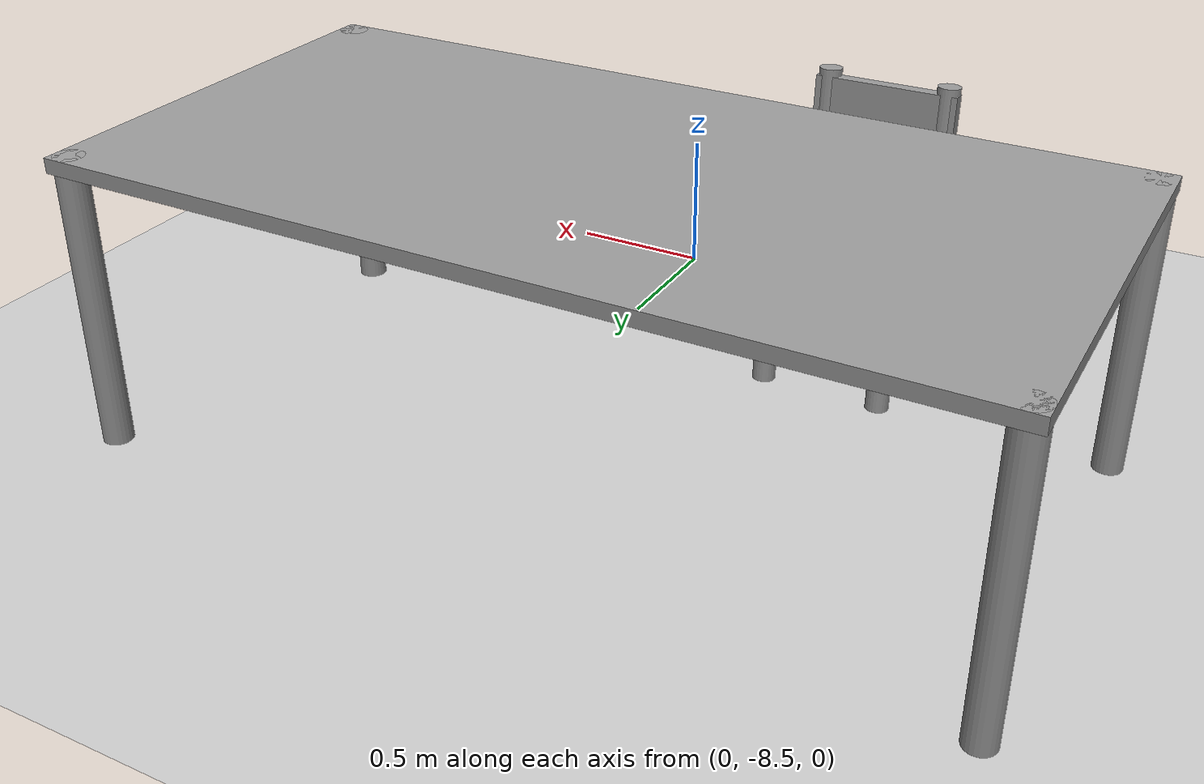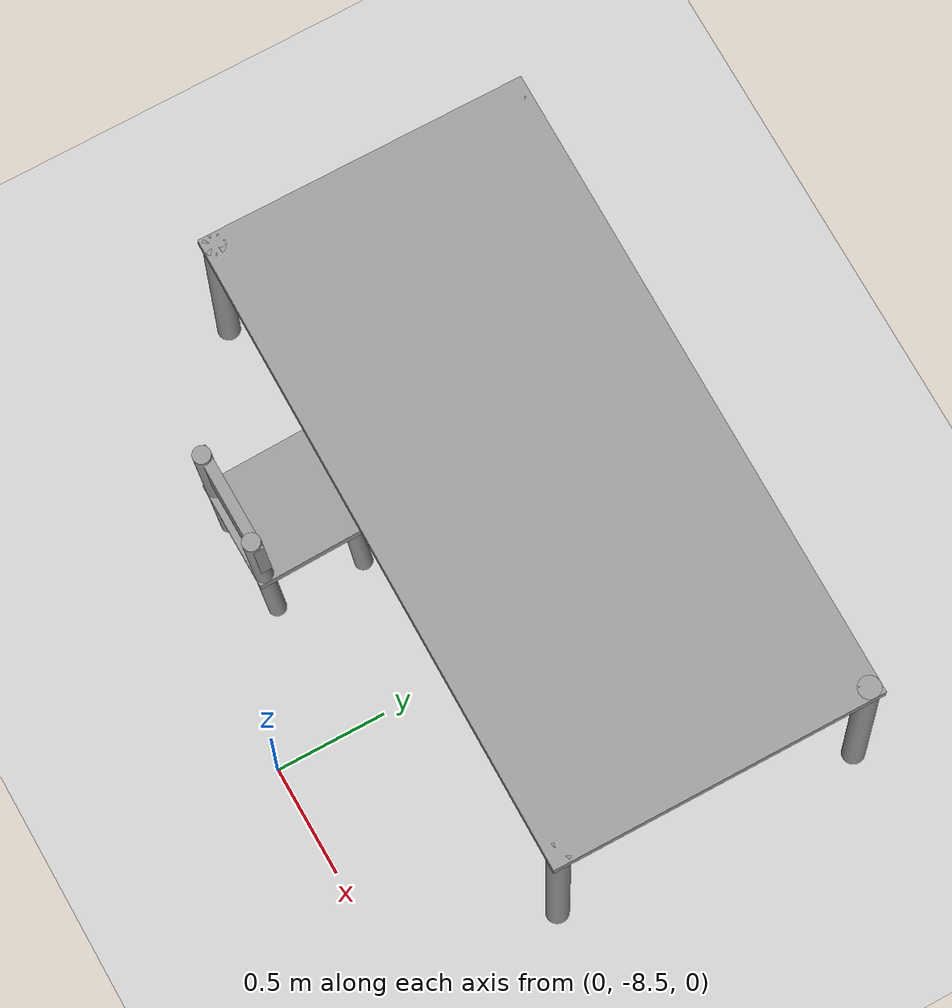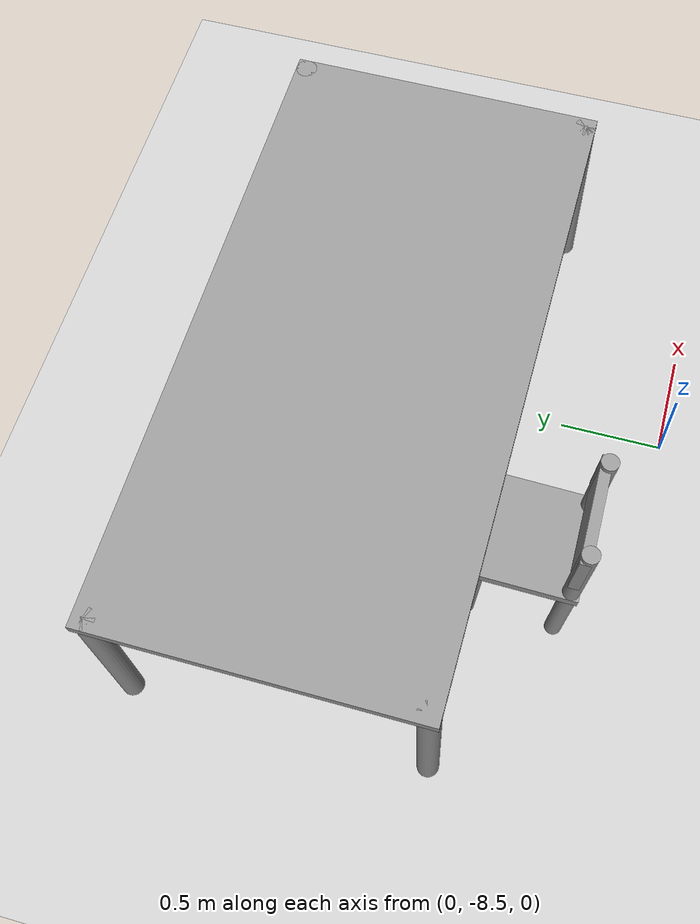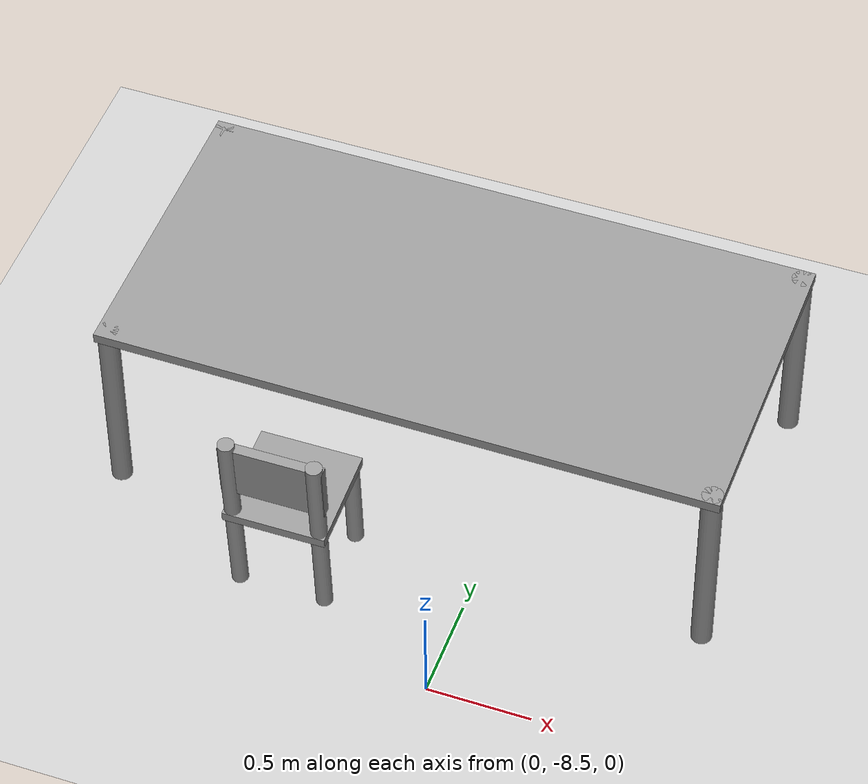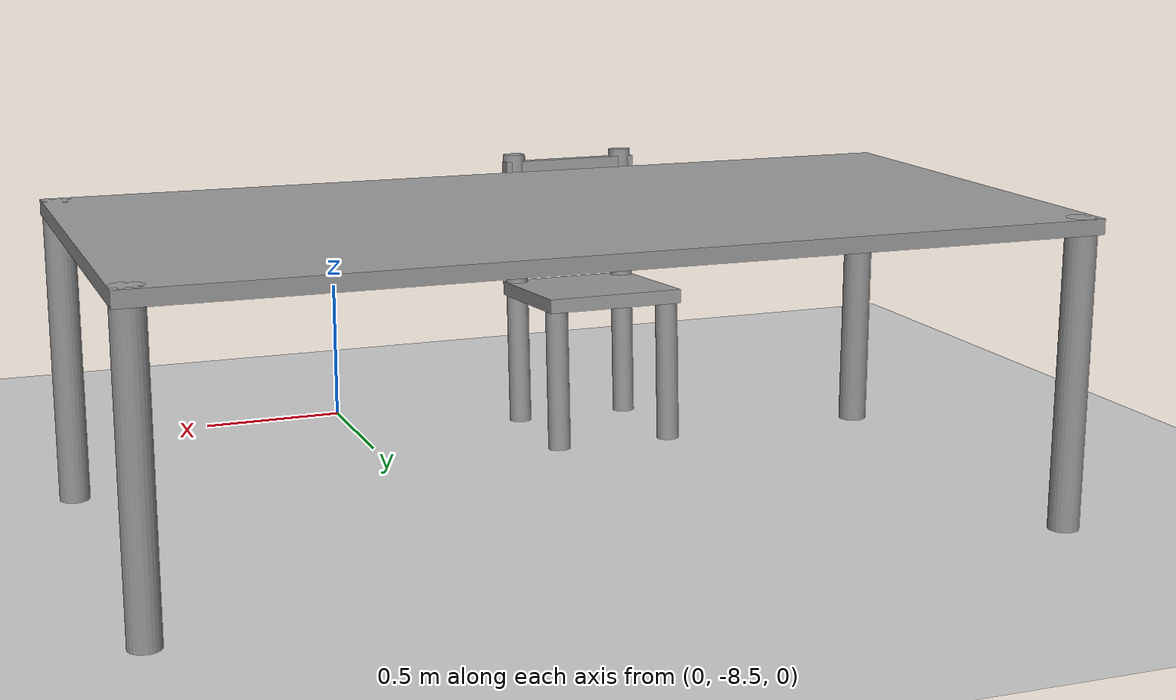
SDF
<sdf version="1.6">
 <world name="default">
  <model name="ground_plane">
   <static>1</static>
   <link name="link">
    <collision name="collision">
     <geometry><plane><normal>0 0 1</normal><size>100 100</size></plane></geometry>
     <surface><friction><ode><mu>100</mu><mu2>50</mu2></ode></friction></surface>
    </collision>
    <visual name="visual">
     <cast_shadows>0</cast_shadows>
     <geometry><plane><normal>0 0 1</normal><size>100 100</size></plane></geometry>
     <material>
      <script><uri>file://media/materials/scripts/gazebo.material</uri><name>Gazebo/Grey</name></script>
     </material>
    </visual>
   </link>
  </model>
  <model name="diningTable_0">
   <link name="link_0">
    <pose>-1.45 -0.7 -0.015 0 -0 0</pose>
    <inertial>
     <mass>1</mass>
     <inertia><ixx>0.145833</ixx><ixy>0</ixy><ixz>0</ixz><iyy>0.145833</iyy><iyz>0</iyz><izz>0.125</izz></inertia>
    </inertial>
    <visual name="visual">
     <geometry><cylinder><radius>0.05</radius><length>1</length></cylinder></geometry>
     <material>
      <lighting>1</lighting>
      <script><uri>file://media/materials/scripts/gazebo.material</uri><name>Gazebo/Grey</name></script>
      <shader type="pixel"><normal_map>__default__</normal_map></shader>
      <ambient>0.3 0.3 0.3 1</ambient>
      <diffuse>0.7 0.7 0.7 1</diffuse>
      <specular>0.01 0.01 0.01 1</specular>
      <emissive>0 0 0 1</emissive>
     </material>
    </visual>
    <collision name="collision">
     <geometry><cylinder><radius>0.05</radius><length>1</length></cylinder></geometry>
     <surface>
      <friction>
       <ode><mu>1</mu><mu2>1</mu2><fdir1>0 0 0</fdir1><slip1>0</slip1><slip2>0</slip2></ode>
       <torsional>
        <coefficient>1</coefficient>
        <patch_radius>0</patch_radius>
        <surface_radius>0</surface_radius>
        <use_patch_radius>1</use_patch_radius>
        <ode><slip>0</slip></ode>
       </torsional>
      </friction>
      <bounce><restitution_coefficient>0</restitution_coefficient><threshold>1e+06</threshold></bounce>
      <contact>
       <collide_without_contact>0</collide_without_contact>
       <collide_without_contact_bitmask>1</collide_without_contact_bitmask>
       <collide_bitmask>1</collide_bitmask>
       <ode>
        <soft_cfm>0</soft_cfm>
        <soft_erp>0.2</soft_erp>
        <kp>1e+13</kp>
        <kd>1</kd>
        <max_vel>0.01</max_vel>
        <min_depth>0</min_depth>
       </ode>
       <bullet>
        <split_impulse>1</split_impulse>
        <split_impulse_penetration_threshold>-0.01</split_impulse_penetration_threshold>
        <soft_cfm>0</soft_cfm>
        <soft_erp>0.2</soft_erp>
        <kp>1e+13</kp>
        <kd>1</kd>
       </bullet>
      </contact>
     </surface>
    </collision>
   </link>
   <link name="link_0_clone">
    <pose>1.45 0.7 -0.015 0 -0 0</pose>
    <inertial>
     <mass>1</mass>
     <inertia><ixx>0.145833</ixx><ixy>0</ixy><ixz>0</ixz><iyy>0.145833</iyy><iyz>0</iyz><izz>0.125</izz></inertia>
    </inertial>
    <visual name="visual">
     <geometry><cylinder><radius>0.05</radius><length>1</length></cylinder></geometry>
     <material>
      <lighting>1</lighting>
      <script><uri>file://media/materials/scripts/gazebo.material</uri><name>Gazebo/Grey</name></script>
      <shader type="pixel"><normal_map>__default__</normal_map></shader>
      <ambient>0.3 0.3 0.3 1</ambient>
      <diffuse>0.7 0.7 0.7 1</diffuse>
      <specular>0.01 0.01 0.01 1</specular>
      <emissive>0 0 0 1</emissive>
     </material>
    </visual>
    <collision name="collision">
     <geometry><cylinder><radius>0.05</radius><length>1</length></cylinder></geometry>
     <surface>
      <friction>
       <ode><mu>1</mu><mu2>1</mu2><fdir1>0 0 0</fdir1><slip1>0</slip1><slip2>0</slip2></ode>
       <torsional>
        <coefficient>1</coefficient>
        <patch_radius>0</patch_radius>
        <surface_radius>0</surface_radius>
        <use_patch_radius>1</use_patch_radius>
        <ode><slip>0</slip></ode>
       </torsional>
      </friction>
      <bounce><restitution_coefficient>0</restitution_coefficient><threshold>1e+06</threshold></bounce>
      <contact>
       <collide_without_contact>0</collide_without_contact>
       <collide_without_contact_bitmask>1</collide_without_contact_bitmask>
       <collide_bitmask>1</collide_bitmask>
       <ode>
        <soft_cfm>0</soft_cfm>
        <soft_erp>0.2</soft_erp>
        <kp>1e+13</kp>
        <kd>1</kd>
        <max_vel>0.01</max_vel>
        <min_depth>0</min_depth>
       </ode>
       <bullet>
        <split_impulse>1</split_impulse>
        <split_impulse_penetration_threshold>-0.01</split_impulse_penetration_threshold>
        <soft_cfm>0</soft_cfm>
        <soft_erp>0.2</soft_erp>
        <kp>1e+13</kp>
        <kd>1</kd>
       </bullet>
      </contact>
     </surface>
    </collision>
   </link>
   <link name="link_0_clone_0">
    <pose>1.45 -0.7 -0.015 0 -0 0</pose>
    <inertial>
     <mass>1</mass>
     <inertia><ixx>0.145833</ixx><ixy>0</ixy><ixz>0</ixz><iyy>0.145833</iyy><iyz>0</iyz><izz>0.125</izz></inertia>
    </inertial>
    <visual name="visual">
     <geometry><cylinder><radius>0.05</radius><length>1</length></cylinder></geometry>
     <material>
      <lighting>1</lighting>
      <script><uri>file://media/materials/scripts/gazebo.material</uri><name>Gazebo/Grey</name></script>
      <shader type="pixel"><normal_map>__default__</normal_map></shader>
      <ambient>0.3 0.3 0.3 1</ambient>
      <diffuse>0.7 0.7 0.7 1</diffuse>
      <specular>0.01 0.01 0.01 1</specular>
      <emissive>0 0 0 1</emissive>
     </material>
    </visual>
    <collision name="collision">
     <geometry><cylinder><radius>0.05</radius><length>1</length></cylinder></geometry>
     <surface>
      <friction>
       <ode><mu>1</mu><mu2>1</mu2><fdir1>0 0 0</fdir1><slip1>0</slip1><slip2>0</slip2></ode>
       <torsional>
        <coefficient>1</coefficient>
        <patch_radius>0</patch_radius>
        <surface_radius>0</surface_radius>
        <use_patch_radius>1</use_patch_radius>
        <ode><slip>0</slip></ode>
       </torsional>
      </friction>
      <bounce><restitution_coefficient>0</restitution_coefficient><threshold>1e+06</threshold></bounce>
      <contact>
       <collide_without_contact>0</collide_without_contact>
       <collide_without_contact_bitmask>1</collide_without_contact_bitmask>
       <collide_bitmask>1</collide_bitmask>
       <ode>
        <soft_cfm>0</soft_cfm>
        <soft_erp>0.2</soft_erp>
        <kp>1e+13</kp>
        <kd>1</kd>
        <max_vel>0.01</max_vel>
        <min_depth>0</min_depth>
       </ode>
       <bullet>
        <split_impulse>1</split_impulse>
        <split_impulse_penetration_threshold>-0.01</split_impulse_penetration_threshold>
        <soft_cfm>0</soft_cfm>
        <soft_erp>0.2</soft_erp>
        <kp>1e+13</kp>
        <kd>1</kd>
       </bullet>
      </contact>
     </surface>
    </collision>
   </link>
   <link name="link_0_clone_1">
    <pose>-1.45 0.7 -0.015 0 -0 0</pose>
    <inertial>
     <mass>1</mass>
     <inertia><ixx>0.145833</ixx><ixy>0</ixy><ixz>0</ixz><iyy>0.145833</iyy><iyz>0</iyz><izz>0.125</izz></inertia>
    </inertial>
    <visual name="visual">
     <geometry><cylinder><radius>0.05</radius><length>1</length></cylinder></geometry>
     <material>
      <lighting>1</lighting>
      <script><uri>file://media/materials/scripts/gazebo.material</uri><name>Gazebo/Grey</name></script>
      <shader type="pixel"><normal_map>__default__</normal_map></shader>
      <ambient>0.3 0.3 0.3 1</ambient>
      <diffuse>0.7 0.7 0.7 1</diffuse>
      <specular>0.01 0.01 0.01 1</specular>
      <emissive>0 0 0 1</emissive>
     </material>
    </visual>
    <collision name="collision">
     <geometry><cylinder><radius>0.05</radius><length>1</length></cylinder></geometry>
     <surface>
      <friction>
       <ode><mu>1</mu><mu2>1</mu2><fdir1>0 0 0</fdir1><slip1>0</slip1><slip2>0</slip2></ode>
       <torsional>
        <coefficient>1</coefficient>
        <patch_radius>0</patch_radius>
        <surface_radius>0</surface_radius>
        <use_patch_radius>1</use_patch_radius>
        <ode><slip>0</slip></ode>
       </torsional>
      </friction>
      <bounce><restitution_coefficient>0</restitution_coefficient><threshold>1e+06</threshold></bounce>
      <contact>
       <collide_without_contact>0</collide_without_contact>
       <collide_without_contact_bitmask>1</collide_without_contact_bitmask>
       <collide_bitmask>1</collide_bitmask>
       <ode>
        <soft_cfm>0</soft_cfm>
        <soft_erp>0.2</soft_erp>
        <kp>1e+13</kp>
        <kd>1</kd>
        <max_vel>0.01</max_vel>
        <min_depth>0</min_depth>
       </ode>
       <bullet>
        <split_impulse>1</split_impulse>
        <split_impulse_penetration_threshold>-0.01</split_impulse_penetration_threshold>
        <soft_cfm>0</soft_cfm>
        <soft_erp>0.2</soft_erp>
        <kp>1e+13</kp>
        <kd>1</kd>
       </bullet>
      </contact>
     </surface>
    </collision>
   </link>
   <link name="link_1">
    <pose>-0 -0 0.06 0 -0 0</pose>
    <inertial>
     <mass>1</mass>
     <inertia>
      <ixx>0.166667</ixx>
      <ixy>0</ixy>
      <ixz>0</ixz>
      <iyy>0.166667</iyy>
      <iyz>0</iyz>
      <izz>0.166667</izz>
     </inertia>
    </inertial>
    <visual name="visual">
     <pose>0 0 0.4 0 -0 0</pose>
     <geometry><box><size>3 1.5 0.05</size></box></geometry>
     <material>
      <lighting>1</lighting>
      <script><uri>file://media/materials/scripts/gazebo.material</uri><name>Gazebo/Grey</name></script>
      <shader type="pixel"><normal_map>__default__</normal_map></shader>
      <ambient>0.3 0.3 0.3 1</ambient>
      <diffuse>0.7 0.7 0.7 1</diffuse>
      <specular>0.01 0.01 0.01 1</specular>
      <emissive>0 0 0 1</emissive>
     </material>
    </visual>
    <collision name="collision">
     <pose>0 0 0.4 0 -0 0</pose>
     <geometry><box><size>3 1.5 0.05</size></box></geometry>
     <surface>
      <friction>
       <ode><mu>1</mu><mu2>1</mu2><fdir1>0 0 0</fdir1><slip1>0</slip1><slip2>0</slip2></ode>
       <torsional>
        <coefficient>1</coefficient>
        <patch_radius>0</patch_radius>
        <surface_radius>0</surface_radius>
        <use_patch_radius>1</use_patch_radius>
        <ode><slip>0</slip></ode>
       </torsional>
      </friction>
      <bounce><restitution_coefficient>0</restitution_coefficient><threshold>1e+06</threshold></bounce>
      <contact>
       <collide_without_contact>0</collide_without_contact>
       <collide_without_contact_bitmask>1</collide_without_contact_bitmask>
       <collide_bitmask>1</collide_bitmask>
       <ode>
        <soft_cfm>0</soft_cfm>
        <soft_erp>0.2</soft_erp>
        <kp>1e+13</kp>
        <kd>1</kd>
        <max_vel>0.01</max_vel>
        <min_depth>0</min_depth>
       </ode>
       <bullet>
        <split_impulse>1</split_impulse>
        <split_impulse_penetration_threshold>-0.01</split_impulse_penetration_threshold>
        <soft_cfm>0</soft_cfm>
        <soft_erp>0.2</soft_erp>
        <kp>1e+13</kp>
        <kd>1</kd>
       </bullet>
      </contact>
     </surface>
    </collision>
   </link>
   <joint name="link_1_JOINT_4" type="fixed">
    <parent>link_1</parent>
    <child>link_0_clone</child>
    <physics>
     <ode><limit><cfm>0</cfm><erp>0.2</erp></limit><suspension><cfm>0</cfm><erp>0.2</erp></suspension></ode>
    </physics>
   </joint>
   <joint name="link_1_JOINT_5" type="revolute">
    <parent>link_1</parent>
    <child>link_0_clone_0</child>
    <axis>
     <xyz>1 0 0</xyz>
     <use_parent_model_frame>0</use_parent_model_frame>
     <limit>
      <lower>-1.79769e+308</lower>
      <upper>1.79769e+308</upper>
      <effort>-1</effort>
      <velocity>-1</velocity>
     </limit>
     <dynamics>
      <spring_reference>0</spring_reference>
      <spring_stiffness>0</spring_stiffness>
      <damping>0</damping>
     </dynamics>
    </axis>
    <physics>
     <ode><limit><cfm>0</cfm><erp>0.2</erp></limit><suspension><cfm>0</cfm><erp>0.2</erp></suspension></ode>
    </physics>
   </joint>
   <joint name="link_1_JOINT_6" type="fixed">
    <parent>link_1</parent>
    <child>link_0_clone_1</child>
    <physics>
     <ode><limit><cfm>0</cfm><erp>0.2</erp></limit><suspension><cfm>0</cfm><erp>0.2</erp></suspension></ode>
    </physics>
   </joint>
   <joint name="link_1_JOINT_7" type="fixed">
    <parent>link_1</parent>
    <child>link_0</child>
    <physics>
     <ode><limit><cfm>0</cfm><erp>0.2</erp></limit><suspension><cfm>0</cfm><erp>0.2</erp></suspension></ode>
    </physics>
   </joint>
   <static>0</static>
   <pose>-0.361406 -7.075 0.514998 0 1e-06 -0.005366</pose>
  </model>
  <model name="chair_clone_4">
   <link name="link_2">
    <pose>0.235 -0.21 -0.2375 0 -0 0</pose>
    <inertial>
     <mass>1</mass>
     <inertia><ixx>0.145833</ixx><ixy>0</ixy><ixz>0</ixz><iyy>0.145833</iyy><iyz>0</iyz><izz>0.125</izz></inertia>
    </inertial>
    <visual name="visual">
     <geometry><cylinder><radius>0.04</radius><length>0.5</length></cylinder></geometry>
     <material>
      <lighting>1</lighting>
      <script><uri>file://media/materials/scripts/gazebo.material</uri><name>Gazebo/Grey</name></script>
      <shader type="pixel"><normal_map>__default__</normal_map></shader>
      <ambient>0.3 0.3 0.3 1</ambient>
      <diffuse>0.7 0.7 0.7 1</diffuse>
      <specular>0.01 0.01 0.01 1</specular>
      <emissive>0 0 0 1</emissive>
     </material>
    </visual>
    <collision name="collision">
     <geometry><cylinder><radius>0.04</radius><length>0.5</length></cylinder></geometry>
     <surface>
      <friction>
       <ode><mu>1</mu><mu2>1</mu2><fdir1>0 0 0</fdir1><slip1>0</slip1><slip2>0</slip2></ode>
       <torsional>
        <coefficient>1</coefficient>
        <patch_radius>0</patch_radius>
        <surface_radius>0</surface_radius>
        <use_patch_radius>1</use_patch_radius>
        <ode><slip>0</slip></ode>
       </torsional>
      </friction>
      <bounce><restitution_coefficient>0</restitution_coefficient><threshold>1e+06</threshold></bounce>
      <contact>
       <collide_without_contact>0</collide_without_contact>
       <collide_without_contact_bitmask>1</collide_without_contact_bitmask>
       <collide_bitmask>1</collide_bitmask>
       <ode>
        <soft_cfm>0</soft_cfm>
        <soft_erp>0.2</soft_erp>
        <kp>1e+13</kp>
        <kd>1</kd>
        <max_vel>0.01</max_vel>
        <min_depth>0</min_depth>
       </ode>
       <bullet>
        <split_impulse>1</split_impulse>
        <split_impulse_penetration_threshold>-0.01</split_impulse_penetration_threshold>
        <soft_cfm>0</soft_cfm>
        <soft_erp>0.2</soft_erp>
        <kp>1e+13</kp>
        <kd>1</kd>
       </bullet>
      </contact>
     </surface>
    </collision>
   </link>
   <link name="link_2_clone">
    <pose>0.245 0.21 -0.2375 0 -0 0</pose>
    <inertial>
     <mass>1</mass>
     <inertia><ixx>0.145833</ixx><ixy>0</ixy><ixz>0</ixz><iyy>0.145833</iyy><iyz>0</iyz><izz>0.125</izz></inertia>
    </inertial>
    <visual name="visual">
     <geometry><cylinder><radius>0.04</radius><length>0.5</length></cylinder></geometry>
     <material>
      <lighting>1</lighting>
      <script><uri>file://media/materials/scripts/gazebo.material</uri><name>Gazebo/Grey</name></script>
      <shader type="pixel"><normal_map>__default__</normal_map></shader>
      <ambient>0.3 0.3 0.3 1</ambient>
      <diffuse>0.7 0.7 0.7 1</diffuse>
      <specular>0.01 0.01 0.01 1</specular>
      <emissive>0 0 0 1</emissive>
     </material>
    </visual>
    <collision name="collision">
     <geometry><cylinder><radius>0.04</radius><length>0.5</length></cylinder></geometry>
     <surface>
      <friction>
       <ode><mu>1</mu><mu2>1</mu2><fdir1>0 0 0</fdir1><slip1>0</slip1><slip2>0</slip2></ode>
       <torsional>
        <coefficient>1</coefficient>
        <patch_radius>0</patch_radius>
        <surface_radius>0</surface_radius>
        <use_patch_radius>1</use_patch_radius>
        <ode><slip>0</slip></ode>
       </torsional>
      </friction>
      <bounce><restitution_coefficient>0</restitution_coefficient><threshold>1e+06</threshold></bounce>
      <contact>
       <collide_without_contact>0</collide_without_contact>
       <collide_without_contact_bitmask>1</collide_without_contact_bitmask>
       <collide_bitmask>1</collide_bitmask>
       <ode>
        <soft_cfm>0</soft_cfm>
        <soft_erp>0.2</soft_erp>
        <kp>1e+13</kp>
        <kd>1</kd>
        <max_vel>0.01</max_vel>
        <min_depth>0</min_depth>
       </ode>
       <bullet>
        <split_impulse>1</split_impulse>
        <split_impulse_penetration_threshold>-0.01</split_impulse_penetration_threshold>
        <soft_cfm>0</soft_cfm>
        <soft_erp>0.2</soft_erp>
        <kp>1e+13</kp>
        <kd>1</kd>
       </bullet>
      </contact>
     </surface>
    </collision>
   </link>
   <link name="link_2_clone_1">
    <pose>-0.175 -0.21 0.0375 0 -0 0</pose>
    <inertial>
     <mass>1</mass>
     <inertia><ixx>0.145833</ixx><ixy>0</ixy><ixz>0</ixz><iyy>0.145833</iyy><iyz>0</iyz><izz>0.125</izz></inertia>
    </inertial>
    <visual name="visual">
     <geometry><cylinder><radius>0.04</radius><length>1</length></cylinder></geometry>
     <material>
      <lighting>1</lighting>
      <script><uri>file://media/materials/scripts/gazebo.material</uri><name>Gazebo/Grey</name></script>
      <shader type="pixel"><normal_map>__default__</normal_map></shader>
      <ambient>0.3 0.3 0.3 1</ambient>
      <diffuse>0.7 0.7 0.7 1</diffuse>
      <specular>0.01 0.01 0.01 1</specular>
      <emissive>0 0 0 1</emissive>
     </material>
    </visual>
    <collision name="collision">
     <geometry><cylinder><radius>0.04</radius><length>1</length></cylinder></geometry>
     <surface>
      <friction>
       <ode><mu>1</mu><mu2>1</mu2><fdir1>0 0 0</fdir1><slip1>0</slip1><slip2>0</slip2></ode>
       <torsional>
        <coefficient>1</coefficient>
        <patch_radius>0</patch_radius>
        <surface_radius>0</surface_radius>
        <use_patch_radius>1</use_patch_radius>
        <ode><slip>0</slip></ode>
       </torsional>
      </friction>
      <bounce><restitution_coefficient>0</restitution_coefficient><threshold>1e+06</threshold></bounce>
      <contact>
       <collide_without_contact>0</collide_without_contact>
       <collide_without_contact_bitmask>1</collide_without_contact_bitmask>
       <collide_bitmask>1</collide_bitmask>
       <ode>
        <soft_cfm>0</soft_cfm>
        <soft_erp>0.2</soft_erp>
        <kp>1e+13</kp>
        <kd>1</kd>
        <max_vel>0.01</max_vel>
        <min_depth>0</min_depth>
       </ode>
       <bullet>
        <split_impulse>1</split_impulse>
        <split_impulse_penetration_threshold>-0.01</split_impulse_penetration_threshold>
        <soft_cfm>0</soft_cfm>
        <soft_erp>0.2</soft_erp>
        <kp>1e+13</kp>
        <kd>1</kd>
       </bullet>
      </contact>
     </surface>
    </collision>
   </link>
   <link name="link_2_clone_1_clone">
    <pose>-0.175 0.21 0.0375 0 -0 0</pose>
    <inertial>
     <mass>1</mass>
     <inertia><ixx>0.145833</ixx><ixy>0</ixy><ixz>0</ixz><iyy>0.145833</iyy><iyz>0</iyz><izz>0.125</izz></inertia>
    </inertial>
    <visual name="visual">
     <geometry><cylinder><radius>0.04</radius><length>1</length></cylinder></geometry>
     <material>
      <lighting>1</lighting>
      <script><uri>file://media/materials/scripts/gazebo.material</uri><name>Gazebo/Grey</name></script>
      <shader type="pixel"><normal_map>__default__</normal_map></shader>
      <ambient>0.3 0.3 0.3 1</ambient>
      <diffuse>0.7 0.7 0.7 1</diffuse>
      <specular>0.01 0.01 0.01 1</specular>
      <emissive>0 0 0 1</emissive>
     </material>
    </visual>
    <collision name="collision">
     <geometry><cylinder><radius>0.04</radius><length>1</length></cylinder></geometry>
     <surface>
      <friction>
       <ode><mu>1</mu><mu2>1</mu2><fdir1>0 0 0</fdir1><slip1>0</slip1><slip2>0</slip2></ode>
       <torsional>
        <coefficient>1</coefficient>
        <patch_radius>0</patch_radius>
        <surface_radius>0</surface_radius>
        <use_patch_radius>1</use_patch_radius>
        <ode><slip>0</slip></ode>
       </torsional>
      </friction>
      <bounce><restitution_coefficient>0</restitution_coefficient><threshold>1e+06</threshold></bounce>
      <contact>
       <collide_without_contact>0</collide_without_contact>
       <collide_without_contact_bitmask>1</collide_without_contact_bitmask>
       <collide_bitmask>1</collide_bitmask>
       <ode>
        <soft_cfm>0</soft_cfm>
        <soft_erp>0.2</soft_erp>
        <kp>1e+13</kp>
        <kd>1</kd>
        <max_vel>0.01</max_vel>
        <min_depth>0</min_depth>
       </ode>
       <bullet>
        <split_impulse>1</split_impulse>
        <split_impulse_penetration_threshold>-0.01</split_impulse_penetration_threshold>
        <soft_cfm>0</soft_cfm>
        <soft_erp>0.2</soft_erp>
        <kp>1e+13</kp>
        <kd>1</kd>
       </bullet>
      </contact>
     </surface>
    </collision>
   </link>
   <link name="link_3">
    <pose>0.035 -0 0.0375 0 -0 0</pose>
    <inertial>
     <mass>1</mass>
     <inertia>
      <ixx>0.166667</ixx>
      <ixy>0</ixy>
      <ixz>0</ixz>
      <iyy>0.166667</iyy>
      <iyz>0</iyz>
      <izz>0.166667</izz>
     </inertia>
    </inertial>
    <visual name="visual">
     <geometry><box><size>0.5 0.5 0.05</size></box></geometry>
     <material>
      <lighting>1</lighting>
      <script><uri>file://media/materials/scripts/gazebo.material</uri><name>Gazebo/Grey</name></script>
      <shader type="pixel"><normal_map>__default__</normal_map></shader>
      <ambient>0.3 0.3 0.3 1</ambient>
      <diffuse>0.7 0.7 0.7 1</diffuse>
      <specular>0.01 0.01 0.01 1</specular>
      <emissive>0 0 0 1</emissive>
     </material>
    </visual>
    <collision name="collision">
     <geometry><box><size>0.5 0.5 0.05</size></box></geometry>
     <surface>
      <friction>
       <ode><mu>1</mu><mu2>1</mu2><fdir1>0 0 0</fdir1><slip1>0</slip1><slip2>0</slip2></ode>
       <torsional>
        <coefficient>1</coefficient>
        <patch_radius>0</patch_radius>
        <surface_radius>0</surface_radius>
        <use_patch_radius>1</use_patch_radius>
        <ode><slip>0</slip></ode>
       </torsional>
      </friction>
      <bounce><restitution_coefficient>0</restitution_coefficient><threshold>1e+06</threshold></bounce>
      <contact>
       <collide_without_contact>0</collide_without_contact>
       <collide_without_contact_bitmask>1</collide_without_contact_bitmask>
       <collide_bitmask>1</collide_bitmask>
       <ode>
        <soft_cfm>0</soft_cfm>
        <soft_erp>0.2</soft_erp>
        <kp>1e+13</kp>
        <kd>1</kd>
        <max_vel>0.01</max_vel>
        <min_depth>0</min_depth>
       </ode>
       <bullet>
        <split_impulse>1</split_impulse>
        <split_impulse_penetration_threshold>-0.01</split_impulse_penetration_threshold>
        <soft_cfm>0</soft_cfm>
        <soft_erp>0.2</soft_erp>
        <kp>1e+13</kp>
        <kd>1</kd>
       </bullet>
      </contact>
     </surface>
    </collision>
   </link>
   <link name="link_4">
    <pose>-0.165 -0 0.3625 0 -0 0</pose>
    <inertial>
     <mass>1</mass>
     <inertia>
      <ixx>0.166667</ixx>
      <ixy>0</ixy>
      <ixz>0</ixz>
      <iyy>0.166667</iyy>
      <iyz>0</iyz>
      <izz>0.166667</izz>
     </inertia>
    </inertial>
    <visual name="visual">
     <geometry><box><size>0.05 0.5 0.3</size></box></geometry>
     <material>
      <lighting>1</lighting>
      <script><uri>file://media/materials/scripts/gazebo.material</uri><name>Gazebo/Grey</name></script>
      <shader type="pixel"><normal_map>__default__</normal_map></shader>
      <ambient>0.3 0.3 0.3 1</ambient>
      <diffuse>0.7 0.7 0.7 1</diffuse>
      <specular>0.01 0.01 0.01 1</specular>
      <emissive>0 0 0 1</emissive>
     </material>
    </visual>
    <collision name="collision">
     <geometry><box><size>0.05 0.5 0.3</size></box></geometry>
     <surface>
      <friction>
       <ode><mu>1</mu><mu2>1</mu2><fdir1>0 0 0</fdir1><slip1>0</slip1><slip2>0</slip2></ode>
       <torsional>
        <coefficient>1</coefficient>
        <patch_radius>0</patch_radius>
        <surface_radius>0</surface_radius>
        <use_patch_radius>1</use_patch_radius>
        <ode><slip>0</slip></ode>
       </torsional>
      </friction>
      <bounce><restitution_coefficient>0</restitution_coefficient><threshold>1e+06</threshold></bounce>
      <contact>
       <collide_without_contact>0</collide_without_contact>
       <collide_without_contact_bitmask>1</collide_without_contact_bitmask>
       <collide_bitmask>1</collide_bitmask>
       <ode>
        <soft_cfm>0</soft_cfm>
        <soft_erp>0.2</soft_erp>
        <kp>1e+13</kp>
        <kd>1</kd>
        <max_vel>0.01</max_vel>
        <min_depth>0</min_depth>
       </ode>
       <bullet>
        <split_impulse>1</split_impulse>
        <split_impulse_penetration_threshold>-0.01</split_impulse_penetration_threshold>
        <soft_cfm>0</soft_cfm>
        <soft_erp>0.2</soft_erp>
        <kp>1e+13</kp>
        <kd>1</kd>
       </bullet>
      </contact>
     </surface>
    </collision>
   </link>
   <joint name="link_3_JOINT_10" type="fixed">
    <parent>link_3</parent>
    <child>link_2_clone_1_clone</child>
    <physics>
     <ode><limit><cfm>0</cfm><erp>0.2</erp></limit><suspension><cfm>0</cfm><erp>0.2</erp></suspension></ode>
    </physics>
   </joint>
   <joint name="link_3_JOINT_11" type="fixed">
    <parent>link_3</parent>
    <child>link_2_clone_1</child>
    <physics>
     <ode><limit><cfm>0</cfm><erp>0.2</erp></limit><suspension><cfm>0</cfm><erp>0.2</erp></suspension></ode>
    </physics>
   </joint>
   <joint name="link_3_JOINT_12" type="fixed">
    <parent>link_3</parent>
    <child>link_2</child>
    <physics>
     <ode><limit><cfm>0</cfm><erp>0.2</erp></limit><suspension><cfm>0</cfm><erp>0.2</erp></suspension></ode>
    </physics>
   </joint>
   <joint name="link_3_JOINT_14" type="fixed">
    <parent>link_3</parent>
    <child>link_4</child>
    <physics>
     <ode><limit><cfm>0</cfm><erp>0.2</erp></limit><suspension><cfm>0</cfm><erp>0.2</erp></suspension></ode>
    </physics>
   </joint>
   <joint name="link_3_JOINT_9" type="fixed">
    <parent>link_3</parent>
    <child>link_2_clone</child>
    <physics>
     <ode><limit><cfm>0</cfm><erp>0.2</erp></limit><suspension><cfm>0</cfm><erp>0.2</erp></suspension></ode>
    </physics>
   </joint>
   <static>0</static>
   <pose>-0.834321 -8.02433 0.474728 1e-06 -0.060898 1.57509</pose>
  </model>
 </world>
</sdf>
